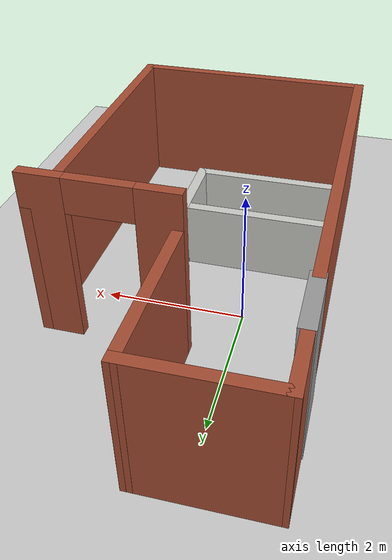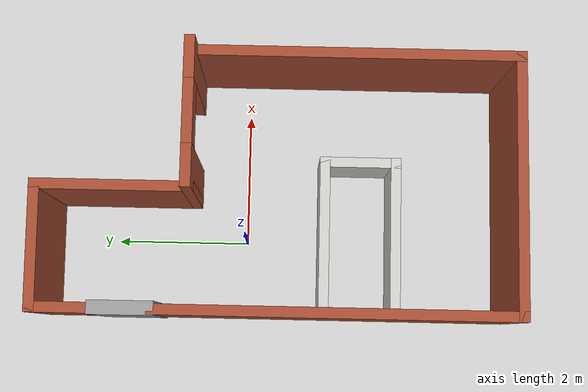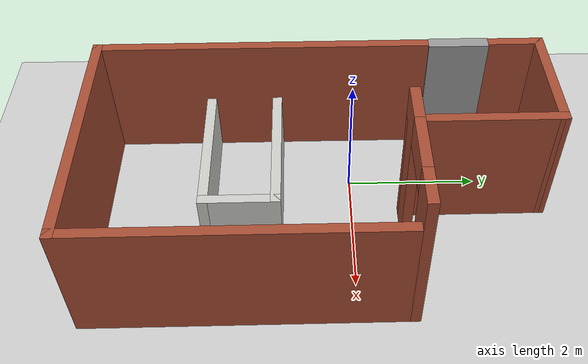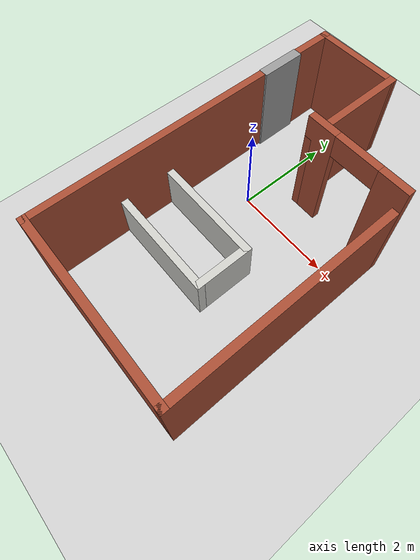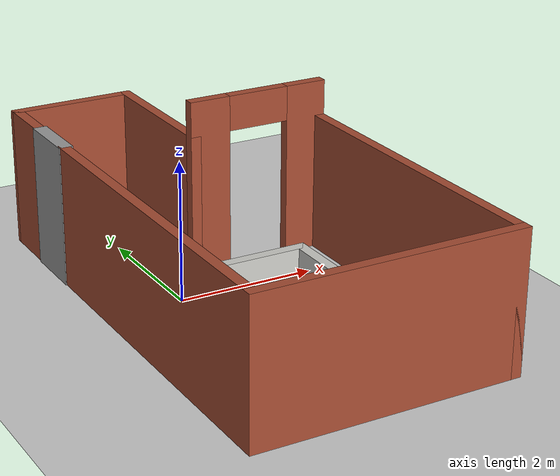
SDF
<sdf version="1.6">
 <world name="default">
  <light name="sun" type="directional">
   <pose>0 0 10 0 -0 0</pose>
   <diffuse>0.8 0.8 0.8 1</diffuse>
   <specular>0.2 0.2 0.2 1</specular>
   <attenuation>
    <range>1000</range>
    <constant>0.9</constant>
    <linear>0.01</linear>
    <quadratic>0.001</quadratic>
   </attenuation>
   <direction>-0.5 0.1 -0.9</direction>
   <spot><inner_angle>0</inner_angle><outer_angle>0</outer_angle><falloff>0</falloff></spot>
  </light>
  <model name="ground_plane">
   <static>1</static>
   <link name="link">
    <collision name="collision">
     <geometry><plane><normal>0 0 1</normal><size>100 100</size></plane></geometry>
     <surface>
      <contact><collide_bitmask>65535</collide_bitmask></contact>
      <friction><ode><mu>100</mu><mu2>50</mu2></ode></friction>
     </surface>
    </collision>
    <visual name="visual">
     <cast_shadows>0</cast_shadows>
     <geometry><plane><normal>0 0 1</normal><size>100 100</size></plane></geometry>
     <material>
      <script><uri>file://media/materials/scripts/gazebo.material</uri><name>Gazebo/Grey</name></script>
     </material>
    </visual>
   </link>
  </model>
  <gravity>0 0 -9.8</gravity>
  <magnetic_field>6e-06 2.3e-05 -4.2e-05</magnetic_field>
  <atmosphere type="adiabatic"/>
  <physics name="default_physics" default="0" type="ode">
   <max_step_size>0.001</max_step_size>
   <real_time_factor>1</real_time_factor>
   <real_time_update_rate>1000</real_time_update_rate>
  </physics>
  <scene><ambient>0.4 0.4 0.4 1</ambient><background>0.7 0.7 0.7 1</background><shadows>1</shadows></scene>
  <spherical_coordinates>
   <surface_model>EARTH_WGS84</surface_model>
   <latitude_deg>0</latitude_deg>
   <longitude_deg>0</longitude_deg>
   <elevation>0</elevation>
   <heading_deg>0</heading_deg>
  </spherical_coordinates>
  <model name="Untitled">
   <pose>0.744857 -0.453651 -0 0 -0 3.14142</pose>
   <link name="Door_2">
    <collision name="Door_2_Collision">
     <geometry><box><size>0.92 0.2 2</size></box></geometry>
     <pose>0 0 1 0 -0 0</pose>
    </collision>
    <visual name="Door_2_Visual">
     <pose>0 0 1 0 -0 0</pose>
     <geometry><box><size>0.92 0.2 2</size></box></geometry>
     <material>
      <script><uri>file://media/materials/scripts/gazebo.material</uri><name>Gazebo/Grey</name></script>
     </material>
    </visual>
    <pose>1.81388 -2.13467 0 0 -0 -1.56967</pose>
   </link>
   <link name="Wall_0">
    <collision name="Wall_0_Collision">
     <geometry><box><size>0.859943 0.15 2</size></box></geometry>
     <pose>0 0 1 0 -0 0</pose>
    </collision>
    <visual name="Wall_0_Visual">
     <pose>0 0 1 0 -0 0</pose>
     <geometry><box><size>0.859943 0.15 2</size></box></geometry>
     <material>
      <script><uri>file://media/materials/scripts/gazebo.material</uri><name>Gazebo/Bricks</name></script>
      <ambient>1 1 1 1</ambient>
     </material>
     <meta><layer>0</layer></meta>
    </visual>
    <pose>1.82469 -3.02467 0 0 -0 -1.5708</pose>
   </link>
   <link name="Wall_41">
    <collision name="Wall_41_Collision">
     <geometry><box><size>2.29 0.15 2</size></box></geometry>
     <pose>0 0 1 0 -0 0</pose>
    </collision>
    <visual name="Wall_41_Visual">
     <pose>0 0 1 0 -0 0</pose>
     <geometry><box><size>2.29 0.15 2</size></box></geometry>
     <material>
      <script><uri>file://media/materials/scripts/gazebo.material</uri><name>Gazebo/Bricks</name></script>
      <ambient>1 1 1 1</ambient>
     </material>
     <meta><layer>0</layer></meta>
    </visual>
    <pose>0.124687 -2.32467 0 0 -0 1.5708</pose>
   </link>
   <link name="Wall_43">
    <pose>-0.850313 -1.25467 0 0 -0 3.14159</pose>
    <visual name="Wall_43_Visual_0">
     <pose>-0.751936 0 1.25 0 -0 0</pose>
     <geometry><box><size>0.596128 0.15 2.5</size></box></geometry>
     <material>
      <script><uri>file://media/materials/scripts/gazebo.material</uri><name>Gazebo/Bricks</name></script>
      <ambient>1 1 1 1</ambient>
     </material>
     <meta><layer>0</layer></meta>
    </visual>
    <collision name="Wall_43_Collision_0">
     <geometry><box><size>0.596128 0.15 2.5</size></box></geometry>
     <pose>-0.751936 0 1.25 0 -0 0</pose>
    </collision>
    <visual name="Wall_43_Visual_1">
     <pose>0.748064 0 1.25 0 -0 0</pose>
     <geometry><box><size>0.603872 0.15 2.5</size></box></geometry>
     <material>
      <script><uri>file://media/materials/scripts/gazebo.material</uri><name>Gazebo/Bricks</name></script>
      <ambient>1 1 1 1</ambient>
     </material>
     <meta><layer>0</layer></meta>
    </visual>
    <collision name="Wall_43_Collision_1">
     <geometry><box><size>0.603872 0.15 2.5</size></box></geometry>
     <pose>0.748064 0 1.25 0 -0 0</pose>
    </collision>
    <visual name="Wall_43_Visual_2">
     <pose>-0.003872 0 2.25 0 -0 0</pose>
     <geometry><box><size>0.9 0.15 0.5</size></box></geometry>
     <material>
      <script><uri>file://media/materials/scripts/gazebo.material</uri><name>Gazebo/Bricks</name></script>
      <ambient>1 1 1 1</ambient>
     </material>
     <meta><layer>0</layer></meta>
    </visual>
    <collision name="Wall_43_Collision_2">
     <geometry><box><size>0.9 0.15 0.5</size></box></geometry>
     <pose>-0.003872 0 2.25 0 -0 0</pose>
    </collision>
   </link>
   <link name="Wall_45">
    <collision name="Wall_45_Collision">
     <geometry><box><size>4.8 0.15 2</size></box></geometry>
     <pose>0 0 1 0 -0 0</pose>
    </collision>
    <visual name="Wall_45_Visual">
     <pose>0 0 1 0 -0 0</pose>
     <geometry><box><size>4.8 0.15 2</size></box></geometry>
     <material>
      <script><uri>file://media/materials/scripts/gazebo.material</uri><name>Gazebo/Bricks</name></script>
      <ambient>1 1 1 1</ambient>
     </material>
     <meta><layer>0</layer></meta>
    </visual>
    <pose>-1.82531 1.07033 0 0 -0 1.5708</pose>
   </link>
   <link name="Wall_47">
    <collision name="Wall_47_Collision">
     <geometry><box><size>3.8 0.15 2</size></box></geometry>
     <pose>0 0 1 0 -0 0</pose>
    </collision>
    <visual name="Wall_47_Visual">
     <pose>0 0 1 0 -0 0</pose>
     <geometry><box><size>3.8 0.15 2</size></box></geometry>
     <material>
      <script><uri>file://media/materials/scripts/gazebo.material</uri><name>Gazebo/Bricks</name></script>
      <ambient>1 1 1 1</ambient>
     </material>
     <meta><layer>0</layer></meta>
    </visual>
    <pose>-0.000313 3.39533 0 0 -0 0</pose>
   </link>
   <link name="Wall_49">
    <collision name="Wall_49_Collision">
     <geometry><box><size>5.25 0.15 2</size></box></geometry>
     <pose>0 0 1 0 -0 0</pose>
    </collision>
    <visual name="Wall_49_Visual">
     <pose>0 0 1 0 -0 0</pose>
     <geometry><box><size>5.25 0.15 2</size></box></geometry>
     <material>
      <script><uri>file://media/materials/scripts/gazebo.material</uri><name>Gazebo/Bricks</name></script>
      <ambient>1 1 1 1</ambient>
     </material>
     <meta><layer>0</layer></meta>
    </visual>
    <pose>1.82469 0.845329 0 0 -0 -1.5708</pose>
   </link>
   <link name="Wall_53">
    <collision name="Wall_53_Collision">
     <geometry><box><size>2.4 0.15 1</size></box></geometry>
     <pose>0 0 0.5 0 -0 0</pose>
    </collision>
    <visual name="Wall_53_Visual">
     <pose>0 0 0.5 0 -0 0</pose>
     <geometry><box><size>2.4 0.15 1</size></box></geometry>
     <material>
      <script><uri>file://media/materials/scripts/gazebo.material</uri><name>Gazebo/CeilingTiled</name></script>
      <ambient>0.333333 0.341176 0.32549 1</ambient>
     </material>
     <meta><layer>0</layer></meta>
    </visual>
    <pose>0.699687 1.73533 0 0 -0 3.14159</pose>
   </link>
   <link name="Wall_56">
    <collision name="Wall_56_Collision">
     <geometry><box><size>1.2 0.15 1</size></box></geometry>
     <pose>0 0 0.5 0 -0 0</pose>
    </collision>
    <visual name="Wall_56_Visual">
     <pose>0 0 0.5 0 -0 0</pose>
     <geometry><box><size>1.2 0.15 1</size></box></geometry>
     <material>
      <script><uri>file://media/materials/scripts/gazebo.material</uri><name>Gazebo/CeilingTiled</name></script>
      <ambient>0.333333 0.341176 0.32549 1</ambient>
     </material>
     <meta><layer>0</layer></meta>
    </visual>
    <pose>-0.425313 1.21033 0 0 -0 -1.5708</pose>
   </link>
   <link name="Wall_58">
    <collision name="Wall_58_Collision">
     <geometry><box><size>2.4 0.15 1</size></box></geometry>
     <pose>0 0 0.5 0 -0 0</pose>
    </collision>
    <visual name="Wall_58_Visual">
     <pose>0 0 0.5 0 -0 0</pose>
     <geometry><box><size>2.4 0.15 1</size></box></geometry>
     <material>
      <script><uri>file://media/materials/scripts/gazebo.material</uri><name>Gazebo/CeilingTiled</name></script>
      <ambient>0.333333 0.341176 0.32549 1</ambient>
     </material>
     <meta><layer>0</layer></meta>
    </visual>
    <pose>0.699687 0.685329 0 0 -0 0</pose>
   </link>
   <link name="Wall_9">
    <collision name="Wall_9_Collision">
     <geometry><box><size>1.85 0.15 2</size></box></geometry>
     <pose>0 0 1 0 -0 0</pose>
    </collision>
    <visual name="Wall_9_Visual">
     <pose>0 0 1 0 -0 0</pose>
     <geometry><box><size>1.85 0.15 2</size></box></geometry>
     <material>
      <script><uri>file://media/materials/scripts/gazebo.material</uri><name>Gazebo/Bricks</name></script>
      <ambient>1 1 1 1</ambient>
     </material>
     <meta><layer>0</layer></meta>
    </visual>
    <pose>0.974687 -3.38717 0 0 -0 -3.13277</pose>
   </link>
   <static>1</static>
  </model>
  <audio><device>default</device></audio>
 </world>
</sdf>
